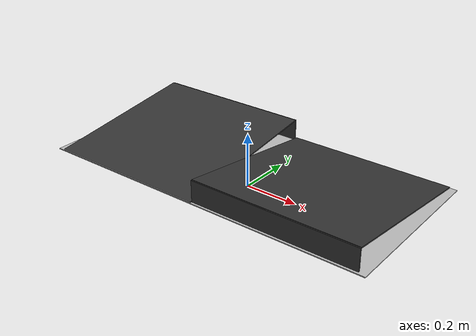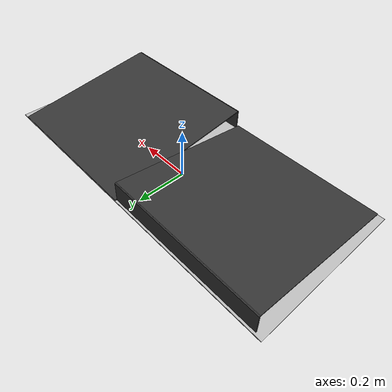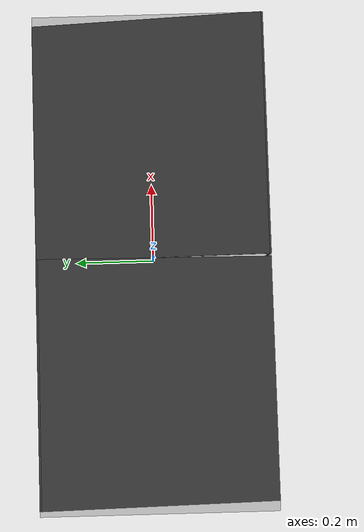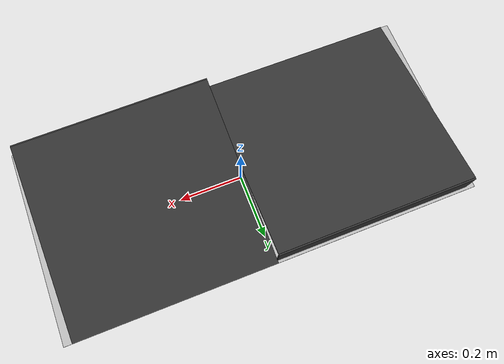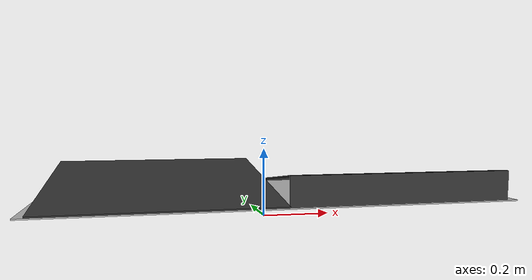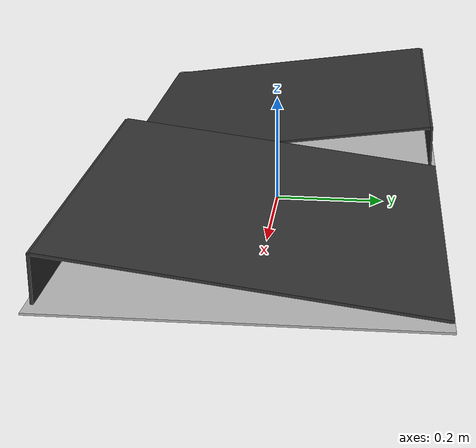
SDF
<?xml version="1.0" ?>
<sdf version="1.5">
  <model name="frc2016_ramparts">
    <static>true</static>

    <link name="link">
      <visual name="platform">
        <pose>0 0 0.06967 0 0 0</pose>
        <geometry>
          <box>
            <size>1.27 0.5969 0.003175</size>
          </box>
        </geometry>
      </visual>

      <collision name="platform">
        <pose>0 0 0.06967 0 0 0</pose>
        <geometry>
          <box>
            <size>1.27 0.5969 0.003175</size>
          </box>
        </geometry>
      </collision>

      <visual name="ramp1">
        <pose>0.30472 0.00588 0.11090 -0.13 0 0</pose>
        <geometry>
          <box>
            <size>0.60957 0.588891 0.00462</size>
          </box>
        </geometry>
        <material>
          <ambient>0.2 0.2 0.2 1.0</ambient>
          <diffuse>0.2 0.2 0.2 1.0</diffuse>
        </material>
      </visual>
      <collision name="ramp1">
        <pose>0.30472 0.00588 0.11090 -0.13 0 0</pose>
        <geometry>
          <box>
            <size>0.60957 0.588891 0.00462</size>
          </box>
        </geometry>
      </collision>

      <visual name="up1">
        <pose>0.30472 -0.28806 0.110720 0 0 0</pose>
        <geometry>
          <box>
            <size>0.60957 0.00462 0.078720</size>
          </box>
        </geometry>
        <material>
          <ambient>0.2 0.2 0.2 1.0</ambient>
          <diffuse>0.2 0.2 0.2 1.0</diffuse>
        </material>
      </visual>
      <collision name="up1">
        <pose>0.30472 -0.28806 0.110720 0 0 0</pose>
        <geometry>
          <box>
            <size>0.60957 0.00462 0.078720</size>
          </box>
        </geometry>
      </collision>

      <visual name="ramp2">
        <pose>-0.30472 -0.00619 0.11090 0.13 0 0</pose>
        <geometry>
          <box>
            <size>0.60957 0.588891 0.00462</size>
          </box>
        </geometry>
        <material>
          <ambient>0.2 0.2 0.2 1.0</ambient>
          <diffuse>0.2 0.2 0.2 1.0</diffuse>
        </material>
      </visual>
      <collision name="ramp2">
        <pose>-0.30472 -0.00619 0.11090 0.13 0 0</pose>
        <geometry>
          <box>
            <size>0.60957 0.588891 0.00462</size>
          </box>
        </geometry>
      </collision>

      <visual name="up2">
        <pose>-0.30472 0.28806 0.110720 0 0 0</pose>
        <geometry>
          <box>
            <size>0.60957 0.00462 0.078720</size>
          </box>
        </geometry>
        <material>
          <ambient>0.2 0.2 0.2 1.0</ambient>
          <diffuse>0.2 0.2 0.2 1.0</diffuse>
        </material>
      </visual>
      <collision name="up2">
        <pose>-0.30472 0.28806 0.110720 0 0 0</pose>
        <geometry>
          <box>
            <size>0.60957 0.00462 0.078720</size>
          </box>
        </geometry>
      </collision>
    </link>
  </model>
</sdf>
